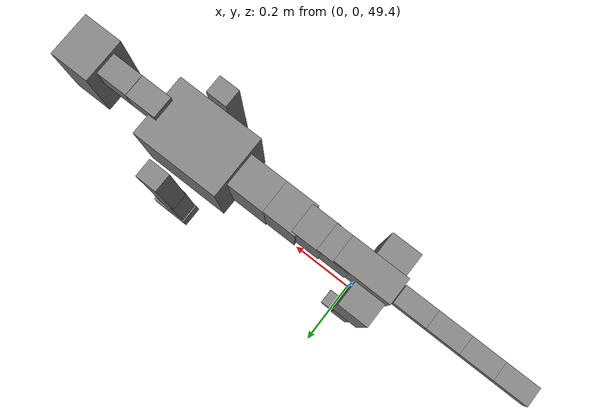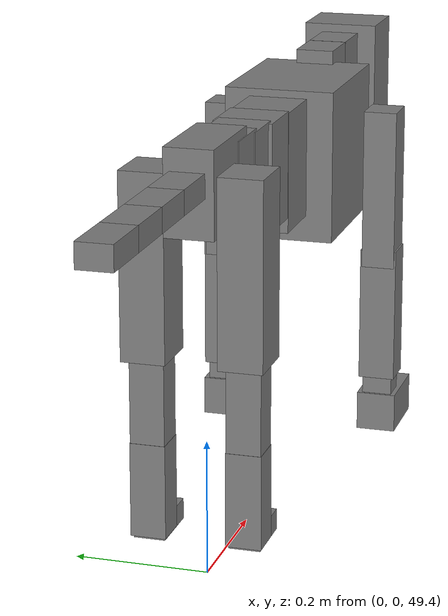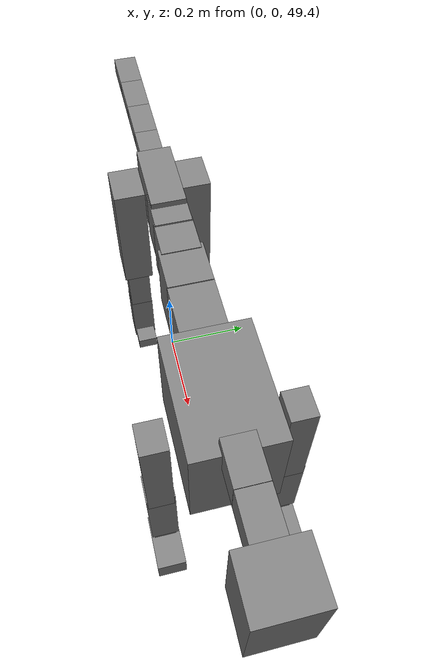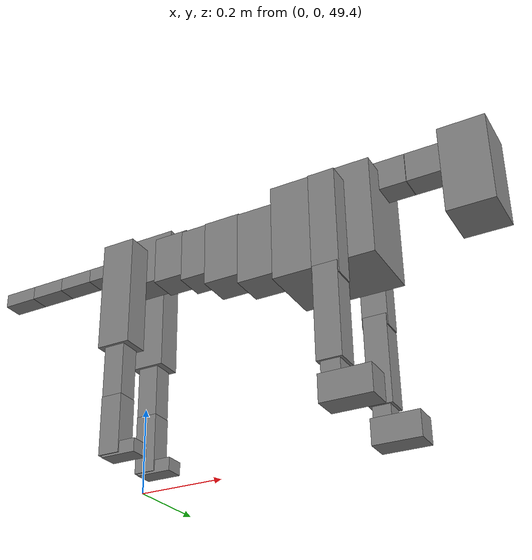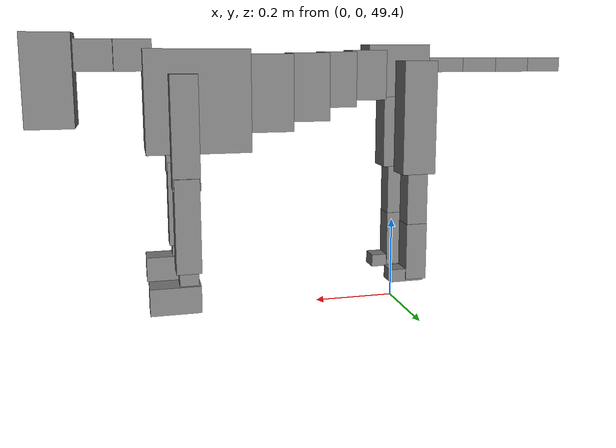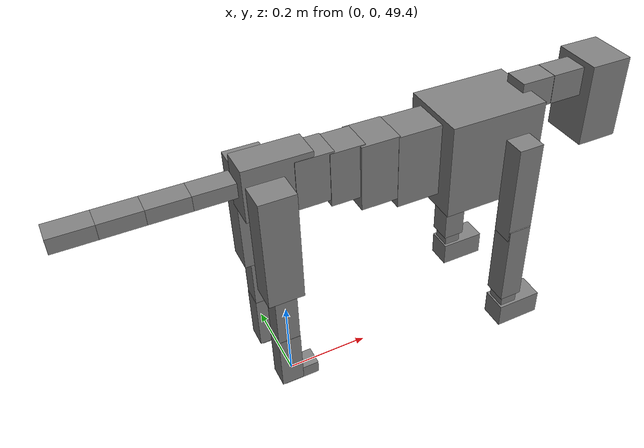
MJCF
<mujoco model="dog">

    <default>
        <joint armature="0.02" stiffness="1" damping="0.2" limited="true"/>
        <geom condim="3" friction="1 0.05 0.05" margin="0.01"/>
        <motor ctrllimited="true" ctrlrange="-1.0 1.0" forcelimited="true" gear="50"/>
    </default>

    <compiler inertiafromgeom="true" angle="radian"/>

    <option timestep="0.016" iterations="50" tolerance="1e-10" solver="Newton" jacobian="dense" cone="pyramidal"/>

    <size nconmax="20000" njmax="60000" nstack="5000000"/>
    <visual>
        <map force="0.1" zfar="30"/>
        <rgba haze="0.15 0.25 0.35 1"/>
        <quality shadowsize="2048"/>
        <global offwidth="800" offheight="800"/>
    </visual>

    <asset>
        <texture type="skybox" builtin="gradient" rgb1="0.3 0.5 0.7" rgb2="0 0 0" width="512" height="512"/>
        <texture name="texplane" type="2d" builtin="checker" rgb1=".2 .3 .4" rgb2=".1 0.15 0.2" width="512" height="512"
                 mark="cross" markrgb=".8 .8 .8"/>
        <texture name="texgeom" type="cube" builtin="flat" mark="cross" width="127" height="1278" rgb1="0.8 0.6 0.4"
                 rgb2="0.8 0.6 0.4" markrgb="1 1 1" random="0.01"/>

        <material name="matplane" reflectance="0.3" texture="texplane" texrepeat="1 1" texuniform="true"/>
        <material name="matgeom" texture="texgeom" texuniform="true" rgba="0.8 0.6 .4 1"/>
    </asset>

    <worldbody>
        <geom name="floor" pos="0 0 0" size="0 0 .25" type="plane" material="matplane" condim="3"/>

        <light directional="false" diffuse=".2 .2 .2" specular="0 0 0" pos="0 0 5" dir="0 0 -1" castshadow="false"/>
        <light mode="targetbodycom" target="torso" directional="false" diffuse=".8 .8 .8" specular="0.3 0.3 0.3"
               pos="0 0 4.0" dir="0 0 -1"/>

        <body name="root" pos="0 0 50">
            <freejoint name="root_1"/>
            <geom type="box" pos="0 0 -0.02" size="0.0774  0.0358  0.063" density="2030"/>

            <body name="spine1" pos="0.054 0 0">
                <joint name="spine1_y" axis="0 1 0" range="0 0.7" limited="true"/>
                <geom type="box" pos="0.02375 0 -0.03" size="0.04375  0.0375  0.05985" density="2030"/>

                <body name="spine2" pos="0.0612 0 0">
                    <joint name="spine2_y" axis="0 1 0" range="-0.15 0.15" limited="true"/>
                    <geom type="box" pos="0.03555  0  -0.04" size="0.04055  0.039  0.06615" density="2030"/>

                    <body name="spine3" pos="0.0730 0 0">
                        <joint name="spine3_y" axis="0 1 0" range="-0.15 0.15" limited="true"/>
                        <geom type="box" pos="0.03555  0  -0.057" size="0.04555  0.0445  0.081" density="2030"/>

                        <body name="spine4" pos="0.0780 0 0">
                            <joint name="spine4_y" axis="0 1 0" range="-0.15 0.15" limited="true"/>
                            <geom type="box" pos="0.05265  0  -0.07" size="0.05265  0.045  0.09135" density="2030"/>

                            <body name="torso" pos="0.1082 0 0">
                                <joint name="torso_y" axis="0 1 0" range="-0.15 0.15" limited="true"/>
                                <geom type="box" pos="0.11925  0  -0.085" size="0.11925  0.085  0.11745"
                                      density="2030"/>

                                <body name="neck1" pos="0.2160  0   0.0180">
                                    <joint name="neck1_y" axis="0 1 0" range="-1.2  -1" limited="true"/>
                                    <geom type="box" pos="0.0423  0  0" size="0.0423  0.03  0.036" density="2325"/>

                                    <body name="neck2" pos="0.0853  0  0">
                                        <joint name="neck2_y" axis="0 1 0" range="0.1  0" limited="true"/>
                                        <geom type="box" pos="0.0423  0  0" size="0.0423  0.03  0.036" density="2325"/>

                                        <body name="head" pos="0.0853  0  0">
                                            <joint name="head_y" axis="0 1 0" range="-0.3  -0.2" limited="true"/>
                                            <geom type="box" pos="0.0531  0  -0.055" size="0.0531  0.06  0.1044"
                                                  density="4030"/>

                                        </body>
                                    </body>
                                </body>

                                <body name="front_shoulder" pos="0.156  0   -0.0480">
                                    <joint name="front_shoulder_y" axis="0 1 0" range="-1 1.5" limited="true"/>
                                    <geom type="box" pos="0 0.13 -0.0994" size="0.0303  0.0259  0.1260" density="1158"/>
                                    <geom type="box" pos="0 -0.13 -0.0994" size="0.0303  0.0259  0.1260"
                                          density="1158"/>

                                    <body name="front_elbow" pos="0  0  -0.1987">
                                        <joint name="front_elbow_y" axis="0 1 0" range="-2 0" limited="true"/>
                                        <geom type="box" pos="0 0.13 -0.1064" size="0.0279  0.0285  0.1064"
                                              density="1081"/>
                                        <geom type="box" pos="0 -0.13 -0.1064" size="0.0279  0.0285  0.1064"
                                              density="1081"/>

                                        <body name="front_wrist" pos="0  0  -0.2128">
                                            <joint name="front_wrist_y" axis="0 1 0" range="-0.2 0" limited="true"/>
                                            <geom type="box" pos="0 0.13 -0.0217" size="0.0211  0.0235  0.0348"
                                                  density="1664"/>
                                            <geom type="box" pos="0 -0.13 -0.0217" size="0.0211  0.0235  0.0348"
                                                  density="1664"/>

                                            <body name="front_finger_end" pos="0  0  -0.0433">
                                                <joint name="front_finger_y" axis="0 1 0" range="-0.4 1"
                                                       limited="true"/>
                                                <geom type="box" pos="0.0308  0.13  -0.0156"
                                                      size="0.0565  0.0308  0.0306" density="1515"/>
                                                <geom type="box" pos="0.0308  -0.13  -0.0156"
                                                      size="0.0565  0.0308  0.0306" density="1515"/>

                                            </body>

                                        </body>
                                    </body>
                                </body>

                            </body>
                        </body>
                    </body>
                </body>
            </body>

            <body name="back_hip" pos="-0.03 0 -0.018">
                <joint name="back_hip_y" axis="0 1 0" range="-1.5 0.3" limited="true"/>
                <geom type="box" pos="0 0.07 -0.1132" size="0.0412  0.0323  0.1360" density="1154"/>
                <geom type="box" pos="0 -0.07 -0.1132" size="0.0412  0.0323  0.1360" density="1154"/>

                <body name="back_knee" pos="0  0  -0.2263">
                    <joint name="back_knee_y" axis="0 1 0" range="0 2.8" limited="true"/>
                    <geom type="box" pos="0 0.07 -0.0793" size="0.0255  0.0252  0.0948" density="1227"/>
                    <geom type="box" pos="0 -0.07 -0.0793" size="0.0255  0.0252  0.0948" density="1227"/>

                    <body name="back_ankle" pos="0  0  -0.1586">
                        <joint name="back_ankle_y" axis="0 1 0" range="-2.2 0" limited="true"/>
                        <geom type="box" pos="0 0.07 -0.0585" size="0.0259  0.0259  0.0697" density="1284"/>
                        <geom type="box" pos="0 -0.07 -0.0585" size="0.0259  0.0259  0.0697" density="1284"/>

                        <body name="back_toe_end" pos="0  0  -0.1169">
                            <joint name="back_toe_y" axis="0 1 0" range="-0.4 1" limited="true"/>
                            <geom type="box" pos="0.0231  0.07  -0.0006" size="0.0424  0.0231  0.0156" density="1515"/>
                            <geom type="box" pos="0.0231  -0.07  -0.0006" size="0.0424  0.0231  0.0156" density="1515"/>

                        </body>
                    </body>
                </body>
            </body>

            <body name="tail1" pos="-0.074 0 -0.006">
                <joint name="tail1_y" axis="0 1 0" range="-0.2 0.2" limited="true"/>
                <geom type="box" pos="-0.0536  0  0" size="0.045  0.025  0.0175" density="1587"/>

                <body name="tail2" pos="-0.09 0 0">
                    <joint name="tail2_y" axis="0 1 0" range="-0.2 0.2" limited="true"/>
                    <geom type="box" pos="-0.0536  0  0" size="0.045  0.025  0.0175" density="1587"/>

                    <body name="tail3" pos="-0.09 0 0">
                        <joint name="tail3_y" axis="0 1 0" range="-0.2 0.2" limited="true"/>
                        <geom type="box" pos="-0.0536  0  0" size="0.045  0.025  0.0175" density="1587"/>

                        <body name="tail4" pos="-0.09 0 0">
                            <joint name="tail4_y" axis="0 1 0" range="-0.2 0.2" limited="true"/>
                            <geom type="box" pos="-0.0536  0  0" size="0.045  0.025  0.0175" density="1587"/>

                        </body>
                    </body>
                </body>
            </body>
        </body>
    </worldbody>

    <actuator>
        <motor joint="spine1_y" forcerange="-150 150     "/>
        <motor joint="spine2_y" forcerange="-150 150     "/>
        <motor joint="spine3_y" forcerange="-150 150     "/>
        <motor joint="spine4_y" forcerange="-150 150     "/>
        <motor joint="torso_y" forcerange="-150 150     "/>
        <motor joint="neck1_y" forcerange="-100 100       "/>
        <motor joint="neck2_y" forcerange="-100 100       "/>
        <motor joint="head_y" forcerange="-150 150       "/>
        <motor joint="front_shoulder_y" forcerange="-152.90 119.88"/>
        <motor joint="front_elbow_y" forcerange="-140.37 167.22"/>
        <motor joint="front_wrist_y" forcerange="-119.43 68.42"/>
        <motor joint="front_finger_y" forcerange="-65.70 58.80"/>
        <motor joint="back_hip_y" forcerange="-347.08 283.74"/>
        <motor joint="back_knee_y" forcerange="-283.56 282.55"/>
        <motor joint="back_angle_y" forcerange="-132.92 181.52"/>
        <motor joint="back_toe_y" forcerange="-50.17 54.90"/>
        <motor joint="tail1_y" forcerange="-50 50     "/>
        <motor joint="tail2_y" forcerange="-50 50     "/>
        <motor joint="tail3_y" forcerange="-50 50     "/>
        <motor joint="tail4_y" forcerange="-50 50     "/>
    </actuator>
</mujoco>
